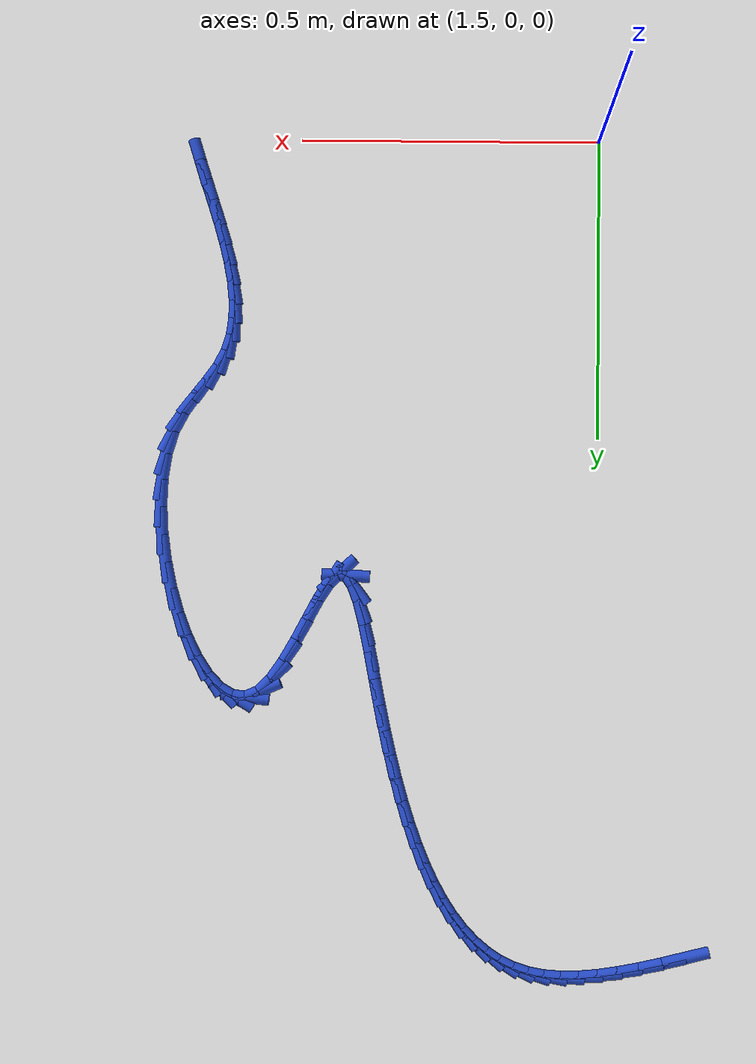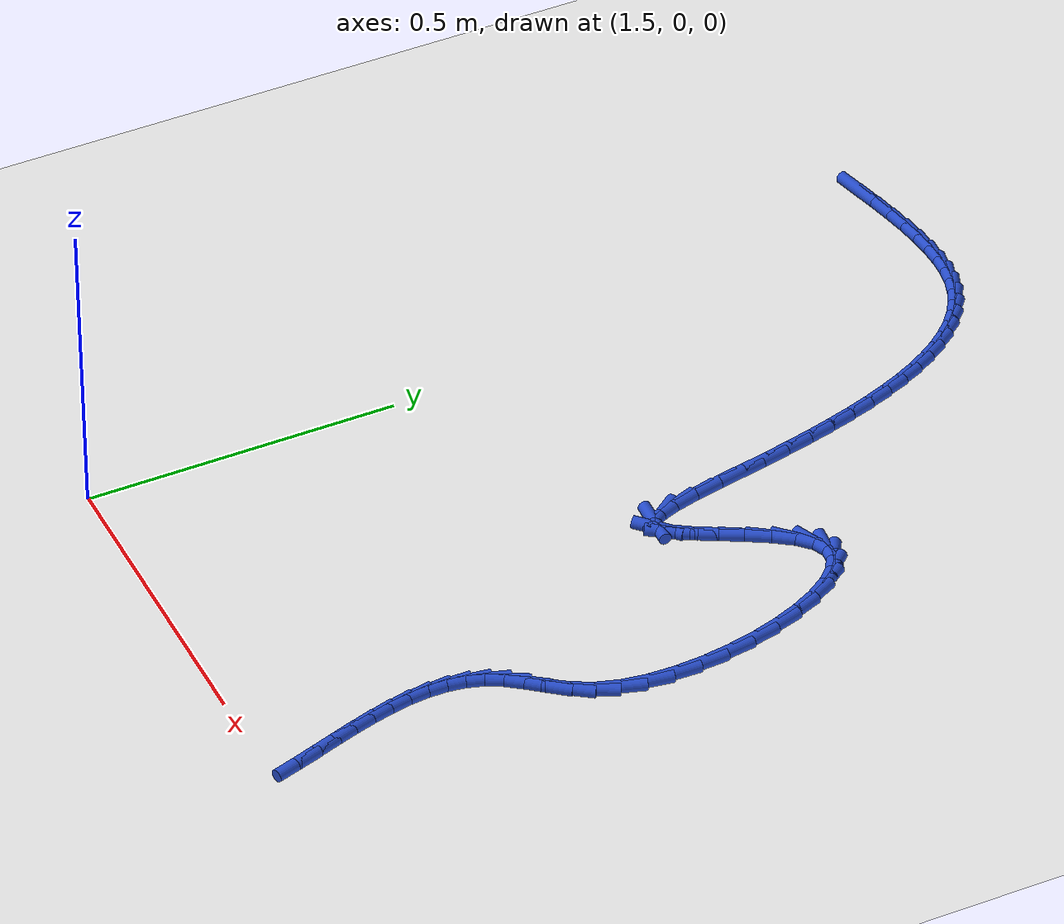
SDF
<sdf version="1.6">
 <world name="default">
  <model name="ground_plane">
   <static>1</static>
   <link name="link">
    <collision name="collision">
     <geometry><plane><normal>0 0 1</normal><size>100 100</size></plane></geometry>
     <surface><friction><ode><mu>100</mu><mu2>50</mu2></ode></friction></surface>
    </collision>
    <visual name="visual">
     <cast_shadows>0</cast_shadows>
     <geometry><plane><normal>0 0 1</normal><size>100 100</size></plane></geometry>
     <material>
      <script><uri>file://media/materials/scripts/gazebo.material</uri><name>Gazebo/WhiteGlow</name></script>
     </material>
    </visual>
   </link>
  </model>
  <model name="line">
   <link name="link_68">
    <pose>1.351170109188373 1.3618320701834135 0.01 0 1.57 0.24249999319359616</pose>
    <collision name="collision">
     <geometry><cylinder><radius>0.01</radius><length>0.08</length></cylinder></geometry>
    </collision>
    <visual name="visual">
     <material>
      <script><name>Gazebo/Blue</name><uri>file://media/materials/scripts/gazebo.material</uri></script>
     </material>
     <geometry><cylinder><radius>0.01</radius><length>0.08</length></cylinder></geometry>
    </visual>
   </link>
   <link name="link_69">
    <pose>1.3904356467151624 1.3715451091917472 0.01 0 1.57 0.22034354270858633</pose>
    <collision name="collision">
     <geometry><cylinder><radius>0.01</radius><length>0.08</length></cylinder></geometry>
    </collision>
    <visual name="visual">
     <material>
      <script><name>Gazebo/Blue</name><uri>file://media/materials/scripts/gazebo.material</uri></script>
     </material>
     <geometry><cylinder><radius>0.01</radius><length>0.08</length></cylinder></geometry>
    </visual>
   </link>
   <link name="link_70">
    <pose>1.4277472736054202 1.379902173764043 0.01 0 1.57 0.18842034385660517</pose>
    <collision name="collision">
     <geometry><cylinder><radius>0.01</radius><length>0.08</length></cylinder></geometry>
    </collision>
    <visual name="visual">
     <material>
      <script><name>Gazebo/Blue</name><uri>file://media/materials/scripts/gazebo.material</uri></script>
     </material>
     <geometry><cylinder><radius>0.01</radius><length>0.08</length></cylinder></geometry>
    </visual>
   </link>
   <link name="link_71">
    <pose>1.4631463270556389 1.3866521449567997 0.01 0 1.57 0.14487924602289468</pose>
    <collision name="collision">
     <geometry><cylinder><radius>0.01</radius><length>0.08</length></cylinder></geometry>
    </collision>
    <visual name="visual">
     <material>
      <script><name>Gazebo/Blue</name><uri>file://media/materials/scripts/gazebo.material</uri></script>
     </material>
     <geometry><cylinder><radius>0.01</radius><length>0.08</length></cylinder></geometry>
    </visual>
   </link>
   <link name="link_72">
    <pose>1.4966741442682563 1.391543903824444 0.01 0 1.57 0.08755508844286412</pose>
    <collision name="collision">
     <geometry><cylinder><radius>0.01</radius><length>0.08</length></cylinder></geometry>
    </collision>
    <visual name="visual">
     <material>
      <script><name>Gazebo/Blue</name><uri>file://media/materials/scripts/gazebo.material</uri></script>
     </material>
     <geometry><cylinder><radius>0.01</radius><length>0.08</length></cylinder></geometry>
    </visual>
   </link>
   <link name="link_73">
    <pose>1.5283720624457124 1.3943263314214003 0.01 0 1.57 0.014107605019824266</pose>
    <collision name="collision">
     <geometry><cylinder><radius>0.01</radius><length>0.08</length></cylinder></geometry>
    </collision>
    <visual name="visual">
     <material>
      <script><name>Gazebo/Blue</name><uri>file://media/materials/scripts/gazebo.material</uri></script>
     </material>
     <geometry><cylinder><radius>0.01</radius><length>0.08</length></cylinder></geometry>
    </visual>
   </link>
   <link name="link_74">
    <pose>1.5582814187904472 1.3947483088020955 0.01 0 1.57 -0.07759340521780513</pose>
    <collision name="collision">
     <geometry><cylinder><radius>0.01</radius><length>0.08</length></cylinder></geometry>
    </collision>
    <visual name="visual">
     <material>
      <script><name>Gazebo/Blue</name><uri>file://media/materials/scripts/gazebo.material</uri></script>
     </material>
     <geometry><cylinder><radius>0.01</radius><length>0.08</length></cylinder></geometry>
    </visual>
   </link>
   <link name="link_75">
    <pose>1.5864435505048988 1.3925587170209548 0.01 0 1.57 -0.1886954634742308</pose>
    <collision name="collision">
     <geometry><cylinder><radius>0.01</radius><length>0.08</length></cylinder></geometry>
    </collision>
    <visual name="visual">
     <material>
      <script><name>Gazebo/Blue</name><uri>file://media/materials/scripts/gazebo.material</uri></script>
     </material>
     <geometry><cylinder><radius>0.01</radius><length>0.08</length></cylinder></geometry>
    </visual>
   </link>
   <link name="link_76">
    <pose>1.6128997947915085 1.3875064371324046 0.01 0 1.57 -0.3175523829255218</pose>
    <collision name="collision">
     <geometry><cylinder><radius>0.01</radius><length>0.08</length></cylinder></geometry>
    </collision>
    <visual name="visual">
     <material>
      <script><name>Gazebo/Blue</name><uri>file://media/materials/scripts/gazebo.material</uri></script>
     </material>
     <geometry><cylinder><radius>0.01</radius><length>0.08</length></cylinder></geometry>
    </visual>
   </link>
   <link name="link_77">
    <pose>1.6376933072270454 1.3793574247327605 0.01 0 1.57 -0.4524309505931041</pose>
    <collision name="collision">
     <geometry><cylinder><radius>0.01</radius><length>0.08</length></cylinder></geometry>
    </collision>
    <visual name="visual">
     <material>
      <script><name>Gazebo/Blue</name><uri>file://media/materials/scripts/gazebo.material</uri></script>
     </material>
     <geometry><cylinder><radius>0.01</radius><length>0.08</length></cylinder></geometry>
    </visual>
   </link>
   <link name="link_78">
    <pose>1.6608891084104762 1.3680829480599987 0.01 0 1.57 -0.5829135004629233</pose>
    <collision name="collision">
     <geometry><cylinder><radius>0.01</radius><length>0.08</length></cylinder></geometry>
    </collision>
    <visual name="visual">
     <material>
      <script><name>Gazebo/Blue</name><uri>file://media/materials/scripts/gazebo.material</uri></script>
     </material>
     <geometry><cylinder><radius>0.01</radius><length>0.08</length></cylinder></geometry>
    </visual>
   </link>
   <link name="link_79">
    <pose>1.6825666781803952 1.3537900476672529 0.01 0 1.57 -0.7044554215433304</pose>
    <collision name="collision">
     <geometry><cylinder><radius>0.01</radius><length>0.08</length></cylinder></geometry>
    </collision>
    <visual name="visual">
     <material>
      <script><name>Gazebo/Blue</name><uri>file://media/materials/scripts/gazebo.material</uri></script>
     </material>
     <geometry><cylinder><radius>0.01</radius><length>0.08</length></cylinder></geometry>
    </visual>
   </link>
   <link name="link_80">
    <pose>1.7028057537194359 1.3365881805691557 0.01 0 1.57 -0.8142227245097484</pose>
    <collision name="collision">
     <geometry><cylinder><radius>0.01</radius><length>0.08</length></cylinder></geometry>
    </collision>
    <visual name="visual">
     <material>
      <script><name>Gazebo/Blue</name><uri>file://media/materials/scripts/gazebo.material</uri></script>
     </material>
     <geometry><cylinder><radius>0.01</radius><length>0.08</length></cylinder></geometry>
    </visual>
   </link>
   <link name="link_81">
    <pose>1.7216860722102312 1.3165868037803397 0.01 0 1.57 -0.9110612721221313</pose>
    <collision name="collision">
     <geometry><cylinder><radius>0.01</radius><length>0.08</length></cylinder></geometry>
    </collision>
    <visual name="visual">
     <material>
      <script><name>Gazebo/Blue</name><uri>file://media/materials/scripts/gazebo.material</uri></script>
     </material>
     <geometry><cylinder><radius>0.01</radius><length>0.08</length></cylinder></geometry>
    </visual>
   </link>
   <link name="link_82">
    <pose>1.739287370835413 1.293895374315437 0.01 0 1.57 -0.9951112838800478</pose>
    <collision name="collision">
     <geometry><cylinder><radius>0.01</radius><length>0.08</length></cylinder></geometry>
    </collision>
    <visual name="visual">
     <material>
      <script><name>Gazebo/Blue</name><uri>file://media/materials/scripts/gazebo.material</uri></script>
     </material>
     <geometry><cylinder><radius>0.01</radius><length>0.08</length></cylinder></geometry>
    </visual>
   </link>
   <link name="link_83">
    <pose>1.7556893867776158 1.2686233491890815 0.01 0 1.57 -1.0672966474542798</pose>
    <collision name="collision">
     <geometry><cylinder><radius>0.01</radius><length>0.08</length></cylinder></geometry>
    </collision>
    <visual name="visual">
     <material>
      <script><name>Gazebo/Blue</name><uri>file://media/materials/scripts/gazebo.material</uri></script>
     </material>
     <geometry><cylinder><radius>0.01</radius><length>0.08</length></cylinder></geometry>
    </visual>
   </link>
   <link name="link_84">
    <pose>1.7709718572194715 1.2408801854159048 0.01 0 1.57 -1.1288977388786352</pose>
    <collision name="collision">
     <geometry><cylinder><radius>0.01</radius><length>0.08</length></cylinder></geometry>
    </collision>
    <visual name="visual">
     <material>
      <script><name>Gazebo/Blue</name><uri>file://media/materials/scripts/gazebo.material</uri></script>
     </material>
     <geometry><cylinder><radius>0.01</radius><length>0.08</length></cylinder></geometry>
    </visual>
   </link>
   <link name="link_85">
    <pose>1.7852145193436126 1.21077534001054 0.01 0 1.57 -1.1812707618068838</pose>
    <collision name="collision">
     <geometry><cylinder><radius>0.01</radius><length>0.08</length></cylinder></geometry>
    </collision>
    <visual name="visual">
     <material>
      <script><name>Gazebo/Blue</name><uri>file://media/materials/scripts/gazebo.material</uri></script>
     </material>
     <geometry><cylinder><radius>0.01</radius><length>0.08</length></cylinder></geometry>
    </visual>
   </link>
   <link name="link_86">
    <pose>1.7984971103326735 1.1784182699876196 0.01 0 1.57 -1.2256946065046281</pose>
    <collision name="collision">
     <geometry><cylinder><radius>0.01</radius><length>0.08</length></cylinder></geometry>
    </collision>
    <visual name="visual">
     <material>
      <script><name>Gazebo/Blue</name><uri>file://media/materials/scripts/gazebo.material</uri></script>
     </material>
     <geometry><cylinder><radius>0.01</radius><length>0.08</length></cylinder></geometry>
    </visual>
   </link>
   <link name="link_87">
    <pose>1.8108993673692855 1.1439184323617766 0.01 0 1.57 -1.2633034832622705</pose>
    <collision name="collision">
     <geometry><cylinder><radius>0.01</radius><length>0.08</length></cylinder></geometry>
    </collision>
    <visual name="visual">
     <material>
      <script><name>Gazebo/Blue</name><uri>file://media/materials/scripts/gazebo.material</uri></script>
     </material>
     <geometry><cylinder><radius>0.01</radius><length>0.08</length></cylinder></geometry>
    </visual>
   </link>
   <link name="link_88">
    <pose>1.8225010276360827 1.1073852841476435 0.01 0 1.57 -1.295068827498434</pose>
    <collision name="collision">
     <geometry><cylinder><radius>0.01</radius><length>0.08</length></cylinder></geometry>
    </collision>
    <visual name="visual">
     <material>
      <script><name>Gazebo/Blue</name><uri>file://media/materials/scripts/gazebo.material</uri></script>
     </material>
     <geometry><cylinder><radius>0.01</radius><length>0.08</length></cylinder></geometry>
    </visual>
   </link>
   <link name="link_89">
    <pose>1.833381828315697 1.0689282823598527 0.01 0 1.57 -1.3218059317176898</pose>
    <collision name="collision">
     <geometry><cylinder><radius>0.01</radius><length>0.08</length></cylinder></geometry>
    </collision>
    <visual name="visual">
     <material>
      <script><name>Gazebo/Blue</name><uri>file://media/materials/scripts/gazebo.material</uri></script>
     </material>
     <geometry><cylinder><radius>0.01</radius><length>0.08</length></cylinder></geometry>
    </visual>
   </link>
   <link name="link_90">
    <pose>1.8436215065907624 1.0286568840130372 0.01 0 1.57 -1.3441909687435973</pose>
    <collision name="collision">
     <geometry><cylinder><radius>0.01</radius><length>0.08</length></cylinder></geometry>
    </collision>
    <visual name="visual">
     <material>
      <script><name>Gazebo/Blue</name><uri>file://media/materials/scripts/gazebo.material</uri></script>
     </material>
     <geometry><cylinder><radius>0.01</radius><length>0.08</length></cylinder></geometry>
    </visual>
   </link>
   <link name="link_91">
    <pose>1.8532997996439113 0.9866805461218304 0.01 0 1.57 -1.3627808464041025</pose>
    <collision name="collision">
     <geometry><cylinder><radius>0.01</radius><length>0.08</length></cylinder></geometry>
    </collision>
    <visual name="visual">
     <material>
      <script><name>Gazebo/Blue</name><uri>file://media/materials/scripts/gazebo.material</uri></script>
     </material>
     <geometry><cylinder><radius>0.01</radius><length>0.08</length></cylinder></geometry>
    </visual>
   </link>
   <link name="link_92">
    <pose>1.8624964446577765 0.9431087257008633 0.01 0 1.57 -1.377732195490833</pose>
    <collision name="collision">
     <geometry><cylinder><radius>0.01</radius><length>0.08</length></cylinder></geometry>
    </collision>
    <visual name="visual">
     <material>
      <script><name>Gazebo/Blue</name><uri>file://media/materials/scripts/gazebo.material</uri></script>
     </material>
     <geometry><cylinder><radius>0.01</radius><length>0.08</length></cylinder></geometry>
    </visual>
   </link>
   <link name="link_93">
    <pose>1.8712959255132244 0.898098405845124 0.01 0 1.57 -1.381519736234798</pose>
    <collision name="collision">
     <geometry><cylinder><radius>0.01</radius><length>0.08</length></cylinder></geometry>
    </collision>
    <visual name="visual">
     <material>
      <script><name>Gazebo/Blue</name><uri>file://media/materials/scripts/gazebo.material</uri></script>
     </material>
     <geometry><cylinder><radius>0.01</radius><length>0.08</length></cylinder></geometry>
    </visual>
   </link>
   <link name="link_94">
    <pose>1.879913399589471 0.8531149315628547 0.01 0 1.57 -1.364628356817437</pose>
    <collision name="collision">
     <geometry><cylinder><radius>0.01</radius><length>0.08</length></cylinder></geometry>
    </collision>
    <visual name="visual">
     <material>
      <script><name>Gazebo/Blue</name><uri>file://media/materials/scripts/gazebo.material</uri></script>
     </material>
     <geometry><cylinder><radius>0.01</radius><length>0.08</length></cylinder></geometry>
    </visual>
   </link>
   <link name="link_95">
    <pose>1.8887078911111856 0.8110641075082912 0.01 0 1.57 -1.3179333147206187</pose>
    <collision name="collision">
     <geometry><cylinder><radius>0.01</radius><length>0.08</length></cylinder></geometry>
    </collision>
    <visual name="visual">
     <material>
      <script><name>Gazebo/Blue</name><uri>file://media/materials/scripts/gazebo.material</uri></script>
     </material>
     <geometry><cylinder><radius>0.01</radius><length>0.08</length></cylinder></geometry>
    </visual>
   </link>
   <link name="link_96">
    <pose>1.8980458173258723 0.7749257606096697 0.01 0 1.57 -1.2110442119755962</pose>
    <collision name="collision">
     <geometry><cylinder><radius>0.01</radius><length>0.08</length></cylinder></geometry>
    </collision>
    <visual name="visual">
     <material>
      <script><name>Gazebo/Blue</name><uri>file://media/materials/scripts/gazebo.material</uri></script>
     </material>
     <geometry><cylinder><radius>0.01</radius><length>0.08</length></cylinder></geometry>
    </visual>
   </link>
   <link name="link_97">
    <pose>1.9082935954810327 0.7476797177952259 0.01 0 1.57 -0.9275611347374778</pose>
    <collision name="collision">
     <geometry><cylinder><radius>0.01</radius><length>0.08</length></cylinder></geometry>
    </collision>
    <visual name="visual">
     <material>
      <script><name>Gazebo/Blue</name><uri>file://media/materials/scripts/gazebo.material</uri></script>
     </material>
     <geometry><cylinder><radius>0.01</radius><length>0.08</length></cylinder></geometry>
    </visual>
   </link>
   <link name="link_98">
    <pose>1.9198176428241704 0.7323058059931963 0.01 0 1.57 -0.04375689343303649</pose>
    <collision name="collision">
     <geometry><cylinder><radius>0.01</radius><length>0.08</length></cylinder></geometry>
    </collision>
    <visual name="visual">
     <material>
      <script><name>Gazebo/Blue</name><uri>file://media/materials/scripts/gazebo.material</uri></script>
     </material>
     <geometry><cylinder><radius>0.01</radius><length>0.08</length></cylinder></geometry>
    </visual>
   </link>
   <link name="link_99">
    <pose>1.932979933361919 0.7317294971889391 0.01 0 1.57 0.7676533025804559</pose>
    <collision name="collision">
     <geometry><cylinder><radius>0.01</radius><length>0.08</length></cylinder></geometry>
    </collision>
    <visual name="visual">
     <material>
      <script><name>Gazebo/Blue</name><uri>file://media/materials/scripts/gazebo.material</uri></script>
     </material>
     <geometry><cylinder><radius>0.01</radius><length>0.08</length></cylinder></geometry>
    </visual>
   </link>
   <link name="link_100">
    <pose>1.947919417240271 0.7461479734643705 0.01 0 1.57 0.9984789768934579</pose>
    <collision name="collision">
     <geometry><cylinder><radius>0.01</radius><length>0.08</length></cylinder></geometry>
    </collision>
    <visual name="visual">
     <material>
      <script><name>Gazebo/Blue</name><uri>file://media/materials/scripts/gazebo.material</uri></script>
     </material>
     <geometry><cylinder><radius>0.01</radius><length>0.08</length></cylinder></geometry>
    </visual>
   </link>
   <link name="link_101">
    <pose>1.9644523233537456 0.7718105113746069 0.01 0 1.57 1.0714328995962172</pose>
    <collision name="collision">
     <geometry><cylinder><radius>0.01</radius><length>0.08</length></cylinder></geometry>
    </collision>
    <visual name="visual">
     <material>
      <script><name>Gazebo/Blue</name><uri>file://media/materials/scripts/gazebo.material</uri></script>
     </material>
     <geometry><cylinder><radius>0.01</radius><length>0.08</length></cylinder></geometry>
    </visual>
   </link>
   <link name="link_102">
    <pose>1.9823696404874078 0.8046576208002547 0.01 0 1.57 1.082842064767478</pose>
    <collision name="collision">
     <geometry><cylinder><radius>0.01</radius><length>0.08</length></cylinder></geometry>
    </collision>
    <visual name="visual">
     <material>
      <script><name>Gazebo/Blue</name><uri>file://media/materials/scripts/gazebo.material</uri></script>
     </material>
     <geometry><cylinder><radius>0.01</radius><length>0.08</length></cylinder></geometry>
    </visual>
   </link>
   <link name="link_103">
    <pose>2.001462357426322 0.8406298116219213 0.01 0 1.57 1.0508434244348959</pose>
    <collision name="collision">
     <geometry><cylinder><radius>0.01</radius><length>0.08</length></cylinder></geometry>
    </collision>
    <visual name="visual">
     <material>
      <script><name>Gazebo/Blue</name><uri>file://media/materials/scripts/gazebo.material</uri></script>
     </material>
     <geometry><cylinder><radius>0.01</radius><length>0.08</length></cylinder></geometry>
    </visual>
   </link>
   <link name="link_104">
    <pose>2.021521462955552 0.8756675937202122 0.01 0 1.57 0.9648721489071092</pose>
    <collision name="collision">
     <geometry><cylinder><radius>0.01</radius><length>0.08</length></cylinder></geometry>
    </collision>
    <visual name="visual">
     <material>
      <script><name>Gazebo/Blue</name><uri>file://media/materials/scripts/gazebo.material</uri></script>
     </material>
     <geometry><cylinder><radius>0.01</radius><length>0.08</length></cylinder></geometry>
    </visual>
   </link>
   <link name="link_105">
    <pose>2.042337945860163 0.9057114769757345 0.01 0 1.57 0.776566457860508</pose>
    <collision name="collision">
     <geometry><cylinder><radius>0.01</radius><length>0.08</length></cylinder></geometry>
    </collision>
    <visual name="visual">
     <material>
      <script><name>Gazebo/Blue</name><uri>file://media/materials/scripts/gazebo.material</uri></script>
     </material>
     <geometry><cylinder><radius>0.01</radius><length>0.08</length></cylinder></geometry>
    </visual>
   </link>
   <link name="link_106">
    <pose>2.0637027850427168 0.9267022342762508 0.01 0 1.57 0.39237137940153094</pose>
    <collision name="collision">
     <geometry><cylinder><radius>0.01</radius><length>0.08</length></cylinder></geometry>
    </collision>
    <visual name="visual">
     <material>
      <script><name>Gazebo/Blue</name><uri>file://media/materials/scripts/gazebo.material</uri></script>
     </material>
     <geometry><cylinder><radius>0.01</radius><length>0.08</length></cylinder></geometry>
    </visual>
   </link>
   <link name="link_107">
    <pose>2.085366132922961 0.9356671707563461 0.01 0 1.57 -0.11395821042734877</pose>
    <collision name="collision">
     <geometry><cylinder><radius>0.01</radius><length>0.08</length></cylinder></geometry>
    </collision>
    <visual name="visual">
     <material>
      <script><name>Gazebo/Blue</name><uri>file://media/materials/scripts/gazebo.material</uri></script>
     </material>
     <geometry><cylinder><radius>0.01</radius><length>0.08</length></cylinder></geometry>
    </visual>
   </link>
   <link name="link_108">
    <pose>2.106944229101608 0.9331974693600298 0.01 0 1.57 -0.5381342117979128</pose>
    <collision name="collision">
     <geometry><cylinder><radius>0.01</radius><length>0.08</length></cylinder></geometry>
    </collision>
    <visual name="visual">
     <material>
      <script><name>Gazebo/Blue</name><uri>file://media/materials/scripts/gazebo.material</uri></script>
     </material>
     <geometry><cylinder><radius>0.01</radius><length>0.08</length></cylinder></geometry>
    </visual>
   </link>
   <link name="link_109">
    <pose>2.1280258989445646 0.9206138995175035 0.01 0 1.57 -0.8143330130886755</pose>
    <collision name="collision">
     <geometry><cylinder><radius>0.01</radius><length>0.08</length></cylinder></geometry>
    </collision>
    <visual name="visual">
     <material>
      <script><name>Gazebo/Blue</name><uri>file://media/materials/scripts/gazebo.material</uri></script>
     </material>
     <geometry><cylinder><radius>0.01</radius><length>0.08</length></cylinder></geometry>
    </visual>
   </link>
   <link name="link_110">
    <pose>2.148199967817736 0.8992372306589695 0.01 0 1.57 -0.991904521471236</pose>
    <collision name="collision">
     <geometry><cylinder><radius>0.01</radius><length>0.08</length></cylinder></geometry>
    </collision>
    <visual name="visual">
     <material>
      <script><name>Gazebo/Blue</name><uri>file://media/materials/scripts/gazebo.material</uri></script>
     </material>
     <geometry><cylinder><radius>0.01</radius><length>0.08</length></cylinder></geometry>
    </visual>
   </link>
   <link name="link_111">
    <pose>2.167055261087027 0.8703882322146285 0.01 0 1.57 -1.115755219428729</pose>
    <collision name="collision">
     <geometry><cylinder><radius>0.01</radius><length>0.08</length></cylinder></geometry>
    </collision>
    <visual name="visual">
     <material>
      <script><name>Gazebo/Blue</name><uri>file://media/materials/scripts/gazebo.material</uri></script>
     </material>
     <geometry><cylinder><radius>0.01</radius><length>0.08</length></cylinder></geometry>
    </visual>
   </link>
   <link name="link_112">
    <pose>2.1841806041183442 0.835387673614682 0.01 0 1.57 -1.2109813948131802</pose>
    <collision name="collision">
     <geometry><cylinder><radius>0.01</radius><length>0.08</length></cylinder></geometry>
    </collision>
    <visual name="visual">
     <material>
      <script><name>Gazebo/Blue</name><uri>file://media/materials/scripts/gazebo.material</uri></script>
     </material>
     <geometry><cylinder><radius>0.01</radius><length>0.08</length></cylinder></geometry>
    </visual>
   </link>
   <link name="link_113">
    <pose>2.199164822277592 0.7955563242893324 0.01 0 1.57 -1.2914587831089064</pose>
    <collision name="collision">
     <geometry><cylinder><radius>0.01</radius><length>0.08</length></cylinder></geometry>
    </collision>
    <visual name="visual">
     <material>
      <script><name>Gazebo/Blue</name><uri>file://media/materials/scripts/gazebo.material</uri></script>
     </material>
     <geometry><cylinder><radius>0.01</radius><length>0.08</length></cylinder></geometry>
    </visual>
   </link>
   <link name="link_114">
    <pose>2.2115967409306765 0.7522149536687796 0.01 0 1.57 -1.365760951923273</pose>
    <collision name="collision">
     <geometry><cylinder><radius>0.01</radius><length>0.08</length></cylinder></geometry>
    </collision>
    <visual name="visual">
     <material>
      <script><name>Gazebo/Blue</name><uri>file://media/materials/scripts/gazebo.material</uri></script>
     </material>
     <geometry><cylinder><radius>0.01</radius><length>0.08</length></cylinder></geometry>
    </visual>
   </link>
   <link name="link_115">
    <pose>2.2210651854435035 0.7066843311832259 0.01 0 1.57 -1.4402093846257185</pose>
    <collision name="collision">
     <geometry><cylinder><radius>0.01</radius><length>0.08</length></cylinder></geometry>
    </collision>
    <visual name="visual">
     <material>
      <script><name>Gazebo/Blue</name><uri>file://media/materials/scripts/gazebo.material</uri></script>
     </material>
     <geometry><cylinder><radius>0.01</radius><length>0.08</length></cylinder></geometry>
    </visual>
   </link>
   <link name="link_116">
    <pose>2.227158981181978 0.6602852262628724 0.01 0 1.57 -1.520607125124174</pose>
    <collision name="collision">
     <geometry><cylinder><radius>0.01</radius><length>0.08</length></cylinder></geometry>
    </collision>
    <visual name="visual">
     <material>
      <script><name>Gazebo/Blue</name><uri>file://media/materials/scripts/gazebo.material</uri></script>
     </material>
     <geometry><cylinder><radius>0.01</radius><length>0.08</length></cylinder></geometry>
    </visual>
   </link>
   <link name="link_117">
    <pose>2.229466953512006 0.6143384083379211 0.01 0 1.57 1.5280588416638226</pose>
    <collision name="collision">
     <geometry><cylinder><radius>0.01</radius><length>0.08</length></cylinder></geometry>
    </collision>
    <visual name="visual">
     <material>
      <script><name>Gazebo/Blue</name><uri>file://media/materials/scripts/gazebo.material</uri></script>
     </material>
     <geometry><cylinder><radius>0.01</radius><length>0.08</length></cylinder></geometry>
    </visual>
   </link>
   <link name="link_118">
    <pose>2.227577927799493 0.5701646468385729 0.01 0 1.57 1.4139357500938081</pose>
    <collision name="collision">
     <geometry><cylinder><radius>0.01</radius><length>0.08</length></cylinder></geometry>
    </collision>
    <visual name="visual">
     <material>
      <script><name>Gazebo/Blue</name><uri>file://media/materials/scripts/gazebo.material</uri></script>
     </material>
     <geometry><cylinder><radius>0.01</radius><length>0.08</length></cylinder></geometry>
    </visual>
   </link>
   <link name="link_119">
    <pose>2.2210807294103434 0.5290847111950296 0.01 0 1.57 1.266455407931871</pose>
    <collision name="collision">
     <geometry><cylinder><radius>0.01</radius><length>0.08</length></cylinder></geometry>
    </collision>
    <visual name="visual">
     <material>
      <script><name>Gazebo/Blue</name><uri>file://media/materials/scripts/gazebo.material</uri></script>
     </material>
     <geometry><cylinder><radius>0.01</radius><length>0.08</length></cylinder></geometry>
    </visual>
   </link>
   <link name="link_120">
    <pose>2.2095641837104636 0.49241937083749254 0.01 0 1.57 1.08803936752277</pose>
    <collision name="collision">
     <geometry><cylinder><radius>0.01</radius><length>0.08</length></cylinder></geometry>
    </collision>
    <visual name="visual">
     <material>
      <script><name>Gazebo/Blue</name><uri>file://media/materials/scripts/gazebo.material</uri></script>
     </material>
     <geometry><cylinder><radius>0.01</radius><length>0.08</length></cylinder></geometry>
    </visual>
   </link>
   <link name="link_121">
    <pose>2.1930926305251974 0.4609923110736967 0.01 0 1.57 0.9545247178983722</pose>
    <collision name="collision">
     <geometry><cylinder><radius>0.01</radius><length>0.08</length></cylinder></geometry>
    </collision>
    <visual name="visual">
     <material>
      <script><name>Gazebo/Blue</name><uri>file://media/materials/scripts/gazebo.material</uri></script>
     </material>
     <geometry><cylinder><radius>0.01</radius><length>0.08</length></cylinder></geometry>
    </visual>
   </link>
   <link name="link_122">
    <pose>2.173681798554983 0.43358731199437034 0.01 0 1.57 0.9024960630460267</pose>
    <collision name="collision">
     <geometry><cylinder><radius>0.01</radius><length>0.08</length></cylinder></geometry>
    </collision>
    <visual name="visual">
     <material>
      <script><name>Gazebo/Blue</name><uri>file://media/materials/scripts/gazebo.material</uri></script>
     </material>
     <geometry><cylinder><radius>0.01</radius><length>0.08</length></cylinder></geometry>
    </visual>
   </link>
   <link name="link_123">
    <pose>2.1538479146580456 0.40846495259168425 0.01 0 1.57 0.945602612082014</pose>
    <collision name="collision">
     <geometry><cylinder><radius>0.01</radius><length>0.08</length></cylinder></geometry>
    </collision>
    <visual name="visual">
     <material>
      <script><name>Gazebo/Blue</name><uri>file://media/materials/scripts/gazebo.material</uri></script>
     </material>
     <geometry><cylinder><radius>0.01</radius><length>0.08</length></cylinder></geometry>
    </visual>
   </link>
   <link name="link_124">
    <pose>2.1361072059959176 0.3838858115407402 0.01 0 1.57 1.0918891877716863</pose>
    <collision name="collision">
     <geometry><cylinder><radius>0.01</radius><length>0.08</length></cylinder></geometry>
    </collision>
    <visual name="visual">
     <material>
      <script><name>Gazebo/Blue</name><uri>file://media/materials/scripts/gazebo.material</uri></script>
     </material>
     <geometry><cylinder><radius>0.01</radius><length>0.08</length></cylinder></geometry>
    </visual>
   </link>
   <link name="link_125">
    <pose>2.122785192778987 0.35822819565160624 0.01 0 1.57 1.27103312308672</pose>
    <collision name="collision">
     <geometry><cylinder><radius>0.01</radius><length>0.08</length></cylinder></geometry>
    </collision>
    <visual name="visual">
     <material>
      <script><name>Gazebo/Blue</name><uri>file://media/materials/scripts/gazebo.material</uri></script>
     </material>
     <geometry><cylinder><radius>0.01</radius><length>0.08</length></cylinder></geometry>
    </visual>
   </link>
   <link name="link_126">
    <pose>2.114370869788488 0.3310041444708396 0.01 0 1.57 1.4305550572949246</pose>
    <collision name="collision">
     <geometry><cylinder><radius>0.01</radius><length>0.08</length></cylinder></geometry>
    </collision>
    <visual name="visual">
     <material>
      <script><name>Gazebo/Blue</name><uri>file://media/materials/scripts/gazebo.material</uri></script>
     </material>
     <geometry><cylinder><radius>0.01</radius><length>0.08</length></cylinder></geometry>
    </visual>
   </link>
   <link name="link_127">
    <pose>2.1103271136354116 0.30235914576338113 0.01 0 1.57 1.5633912975067115</pose>
    <collision name="collision">
     <geometry><cylinder><radius>0.01</radius><length>0.08</length></cylinder></geometry>
    </collision>
    <visual name="visual">
     <material>
      <script><name>Gazebo/Blue</name><uri>file://media/materials/scripts/gazebo.material</uri></script>
     </material>
     <geometry><cylinder><radius>0.01</radius><length>0.08</length></cylinder></geometry>
    </visual>
   </link>
   <link name="link_128">
    <pose>2.1101055989230684 0.27244560257158634 0.01 0 1.57 -1.4727414355671915</pose>
    <collision name="collision">
     <geometry><cylinder><radius>0.01</radius><length>0.08</length></cylinder></geometry>
    </collision>
    <visual name="visual">
     <material>
      <script><name>Gazebo/Blue</name><uri>file://media/materials/scripts/gazebo.material</uri></script>
     </material>
     <geometry><cylinder><radius>0.01</radius><length>0.08</length></cylinder></geometry>
    </visual>
   </link>
   <link name="link_129">
    <pose>2.1131580002547676 0.24141591793781064 0.01 0 1.57 -1.3921228913961905</pose>
    <collision name="collision">
     <geometry><cylinder><radius>0.01</radius><length>0.08</length></cylinder></geometry>
    </collision>
    <visual name="visual">
     <material>
      <script><name>Gazebo/Blue</name><uri>file://media/materials/scripts/gazebo.material</uri></script>
     </material>
     <geometry><cylinder><radius>0.01</radius><length>0.08</length></cylinder></geometry>
    </visual>
   </link>
   <link name="link_130">
    <pose>2.1189359922338196 0.20942249490440948 0.01 0 1.57 -1.3328858734926794</pose>
    <collision name="collision">
     <geometry><cylinder><radius>0.01</radius><length>0.08</length></cylinder></geometry>
    </collision>
    <visual name="visual">
     <material>
      <script><name>Gazebo/Blue</name><uri>file://media/materials/scripts/gazebo.material</uri></script>
     </material>
     <geometry><cylinder><radius>0.01</radius><length>0.08</length></cylinder></geometry>
    </visual>
   </link>
   <link name="link_131">
    <pose>2.1268912494635344 0.17661773651373822 0.01 0 1.57 -1.2918574055306897</pose>
    <collision name="collision">
     <geometry><cylinder><radius>0.01</radius><length>0.08</length></cylinder></geometry>
    </collision>
    <visual name="visual">
     <material>
      <script><name>Gazebo/Blue</name><uri>file://media/materials/scripts/gazebo.material</uri></script>
     </material>
     <geometry><cylinder><radius>0.01</radius><length>0.08</length></cylinder></geometry>
    </visual>
   </link>
   <link name="link_132">
    <pose>2.1364754465472235 0.14315404580815244 0.01 0 1.57 -1.2665947331110574</pose>
    <collision name="collision">
     <geometry><cylinder><radius>0.01</radius><length>0.08</length></cylinder></geometry>
    </collision>
    <visual name="visual">
     <material>
      <script><name>Gazebo/Blue</name><uri>file://media/materials/scripts/gazebo.material</uri></script>
     </material>
     <geometry><cylinder><radius>0.01</radius><length>0.08</length></cylinder></geometry>
    </visual>
   </link>
   <link name="link_133">
    <pose>2.147140258088195 0.1091838258300075 0.01 0 1.57 -1.2554663157709185</pose>
    <collision name="collision">
     <geometry><cylinder><radius>0.01</radius><length>0.08</length></cylinder></geometry>
    </collision>
    <visual name="visual">
     <material>
      <script><name>Gazebo/Blue</name><uri>file://media/materials/scripts/gazebo.material</uri></script>
     </material>
     <geometry><cylinder><radius>0.01</radius><length>0.08</length></cylinder></geometry>
    </visual>
   </link>
   <link name="link_134">
    <pose>2.158337358689761 0.07485947962165934 0.01 0 1.57 -1.2576102443338006</pose>
    <collision name="collision">
     <geometry><cylinder><radius>0.01</radius><length>0.08</length></cylinder></geometry>
    </collision>
    <visual name="visual">
     <material>
      <script><name>Gazebo/Blue</name><uri>file://media/materials/scripts/gazebo.material</uri></script>
     </material>
     <geometry><cylinder><radius>0.01</radius><length>0.08</length></cylinder></geometry>
    </visual>
   </link>
   <link name="link_135">
    <pose>2.1695184229552313 0.040333410225462475 0.01 0 1.57 -1.2728755576589879</pose>
    <collision name="collision">
     <geometry><cylinder><radius>0.01</radius><length>0.08</length></cylinder></geometry>
    </collision>
    <visual name="visual">
     <material>
      <script><name>Gazebo/Blue</name><uri>file://media/materials/scripts/gazebo.material</uri></script>
     </material>
     <geometry><cylinder><radius>0.01</radius><length>0.08</length></cylinder></geometry>
    </visual>
   </link>
  </model>
 </world>
</sdf>
